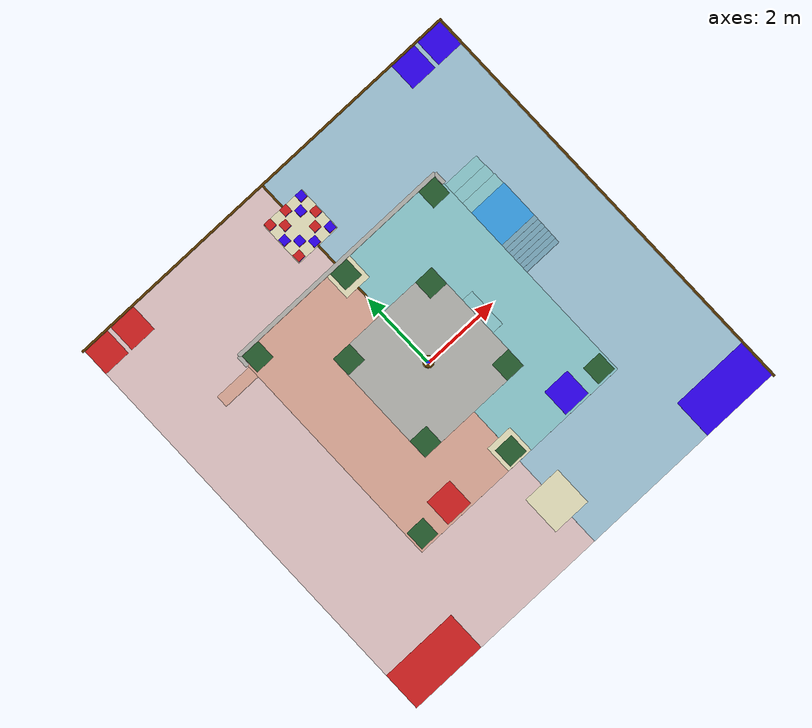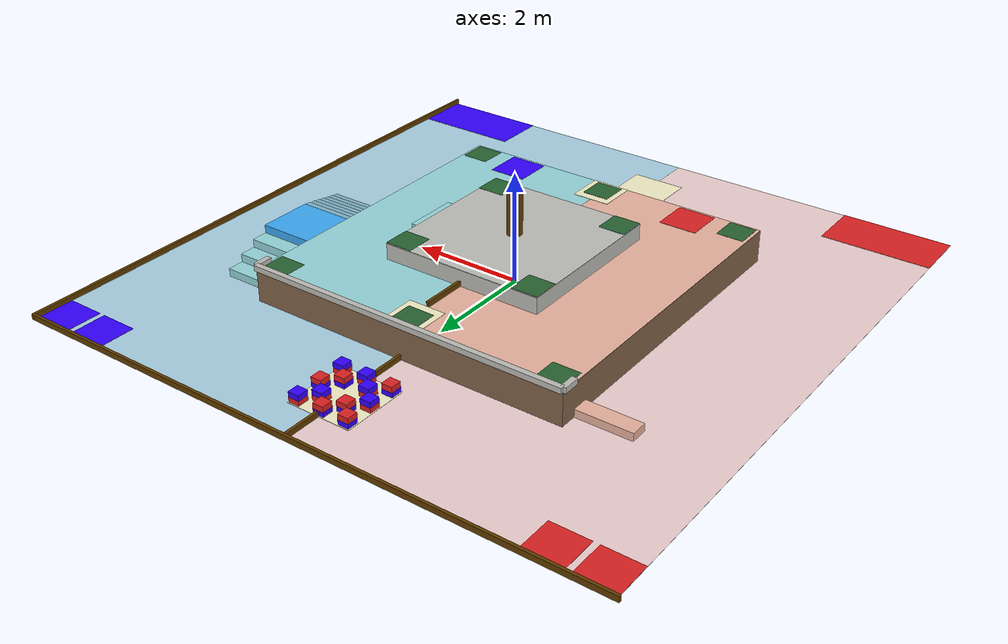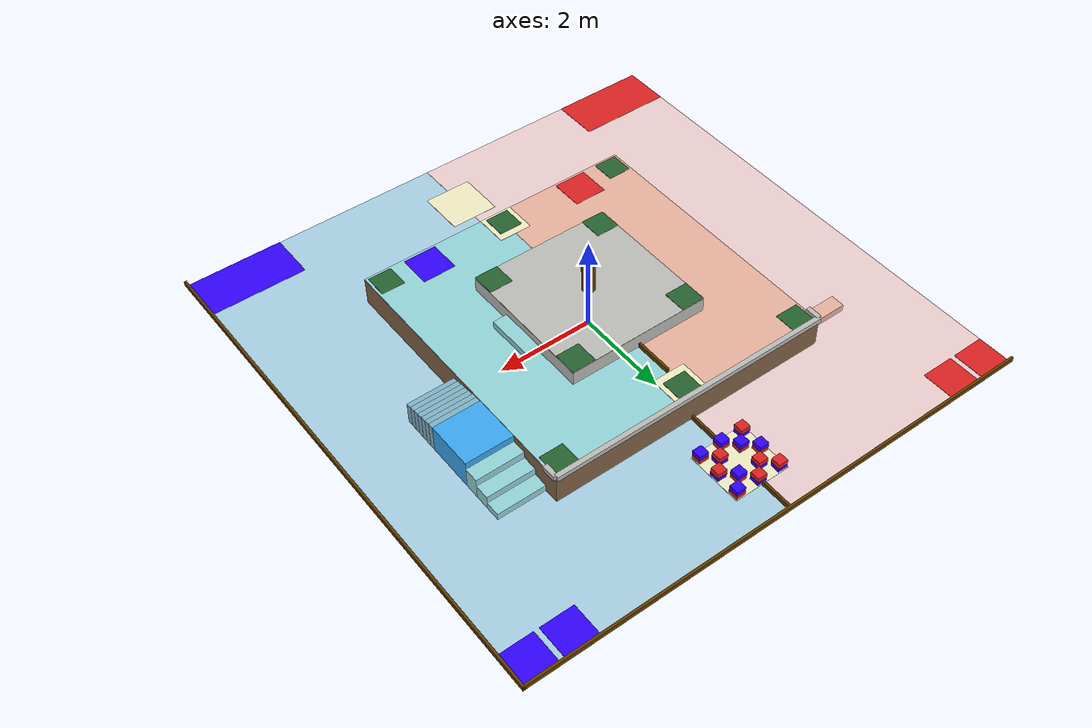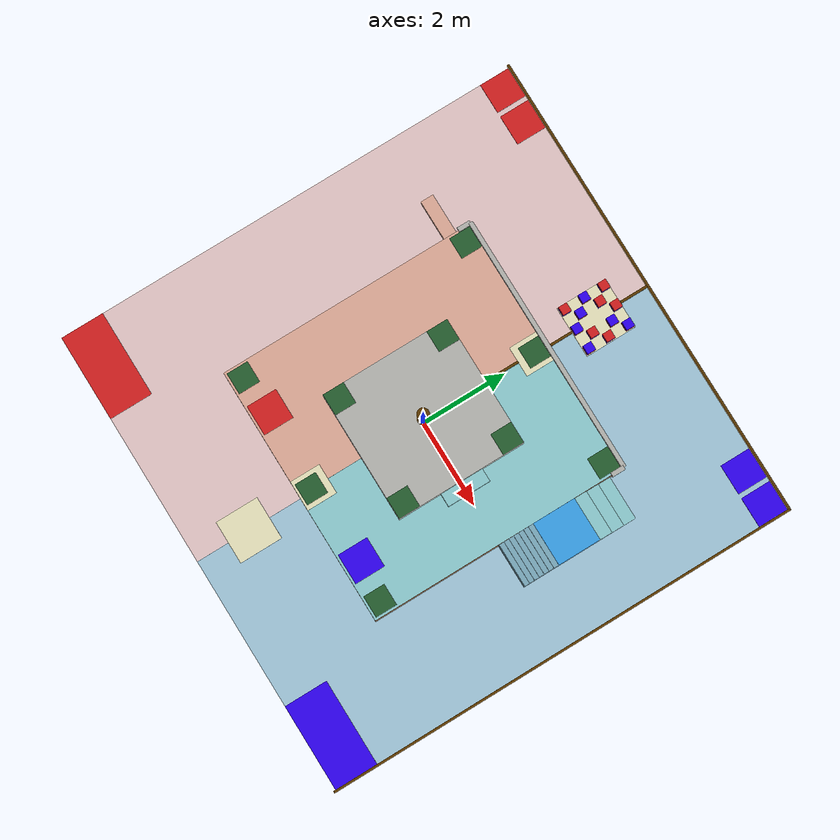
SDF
<sdf version="1.6">
 <world name="robocon2027_arena">
  <model name="catch_floor">
   <static>true</static>
   <pose>0 0 -0.25 0 0 0</pose>
   <link name="link">
    <collision name="col">
     <geometry><plane><normal>0 0 1</normal><size>200 200</size></plane></geometry>
    </collision>
   </link>
  </model>
  <model name="l1_platform">
   <static>true</static>
   <pose>0.0000 0.0000 0.3000 0.000000 0.000000 0.000000</pose>
   <link name="link">
    <collision name="col"><geometry><box><size>6.0 6.0 0.6</size></box></geometry></collision>
    <visual name="vis">
     <geometry><box><size>6.0 6.0 0.6</size></box></geometry>
     <material>
      <ambient>0.510 0.392 0.282 1.00</ambient>
      <diffuse>0.510 0.392 0.282 1.00</diffuse>
      <specular>0.04 0.04 0.04 1</specular>
      <emissive>0 0 0 1</emissive>
     </material>
    </visual>
   </link>
  </model>
  <model name="l2_platform">
   <static>true</static>
   <pose>0.0000 0.0000 0.7500 0.000000 0.000000 0.000000</pose>
   <link name="link">
    <collision name="col"><geometry><box><size>3.0 3.0 0.3</size></box></geometry></collision>
    <visual name="vis">
     <geometry><box><size>3.0 3.0 0.3</size></box></geometry>
     <material>
      <ambient>0.745 0.745 0.725 1.00</ambient>
      <diffuse>0.745 0.745 0.725 1.00</diffuse>
      <specular>0.04 0.04 0.04 1</specular>
      <emissive>0 0 0 1</emissive>
     </material>
    </visual>
   </link>
  </model>
  <model name="central_pillar">
   <static>true</static>
   <pose>0.0000 0.0000 1.3000 0 0 0</pose>
   <link name="link">
    <collision name="col">
     <geometry><cylinder><radius>0.135</radius><length>0.8</length></cylinder></geometry>
    </collision>
    <visual name="vis">
     <geometry><cylinder><radius>0.135</radius><length>0.8</length></cylinder></geometry>
     <material>
      <ambient>0.392 0.243 0.000 1.00</ambient>
      <diffuse>0.392 0.243 0.000 1.00</diffuse>
      <specular>0.04 0.04 0.04 1</specular>
      <emissive>0 0 0 1</emissive>
     </material>
    </visual>
   </link>
  </model>
  <model name="fence_pN">
   <static>true</static>
   <pose>0.0000 5.5250 0.0500 0.000000 0.000000 0.000000</pose>
   <link name="link">
    <collision name="col"><geometry><box><size>11.1 0.05 0.1</size></box></geometry></collision>
    <visual name="vis">
     <geometry><box><size>11.1 0.05 0.1</size></box></geometry>
     <material>
      <ambient>0.392 0.243 0.000 1.00</ambient>
      <diffuse>0.392 0.243 0.000 1.00</diffuse>
      <specular>0.04 0.04 0.04 1</specular>
      <emissive>0 0 0 1</emissive>
     </material>
    </visual>
   </link>
  </model>
  <model name="fence_pE">
   <static>true</static>
   <pose>5.5250 0.0000 0.0500 0.000000 0.000000 0.000000</pose>
   <link name="link">
    <collision name="col"><geometry><box><size>0.05 11.1 0.1</size></box></geometry></collision>
    <visual name="vis">
     <geometry><box><size>0.05 11.1 0.1</size></box></geometry>
     <material>
      <ambient>0.392 0.243 0.000 1.00</ambient>
      <diffuse>0.392 0.243 0.000 1.00</diffuse>
      <specular>0.04 0.04 0.04 1</specular>
      <emissive>0 0 0 1</emissive>
     </material>
    </visual>
   </link>
  </model>
  <model name="gdiv_0">
   <static>true</static>
   <pose>0.0000 3.3250 0.0500 0.000000 0.000000 0.000000</pose>
   <link name="link">
    <collision name="col"><geometry><box><size>0.05 0.65 0.1</size></box></geometry></collision>
    <visual name="vis">
     <geometry><box><size>0.05 0.65 0.1</size></box></geometry>
     <material>
      <ambient>0.392 0.243 0.000 1.00</ambient>
      <diffuse>0.392 0.243 0.000 1.00</diffuse>
      <specular>0.04 0.04 0.04 1</specular>
      <emissive>0 0 0 1</emissive>
     </material>
    </visual>
   </link>
  </model>
  <model name="gdiv_1">
   <static>true</static>
   <pose>0.0000 5.1750 0.0500 0.000000 0.000000 0.000000</pose>
   <link name="link">
    <collision name="col"><geometry><box><size>0.05 0.65 0.1</size></box></geometry></collision>
    <visual name="vis">
     <geometry><box><size>0.05 0.65 0.1</size></box></geometry>
     <material>
      <ambient>0.392 0.243 0.000 1.00</ambient>
      <diffuse>0.392 0.243 0.000 1.00</diffuse>
      <specular>0.04 0.04 0.04 1</specular>
      <emissive>0 0 0 1</emissive>
     </material>
    </visual>
   </link>
  </model>
  <model name="ddiv_0">
   <static>true</static>
   <pose>0.0000 1.9000 0.6500 0.000000 0.000000 0.000000</pose>
   <link name="link">
    <collision name="col"><geometry><box><size>0.05 0.8 0.1</size></box></geometry></collision>
    <visual name="vis">
     <geometry><box><size>0.05 0.8 0.1</size></box></geometry>
     <material>
      <ambient>0.392 0.243 0.000 1.00</ambient>
      <diffuse>0.392 0.243 0.000 1.00</diffuse>
      <specular>0.04 0.04 0.04 1</specular>
      <emissive>0 0 0 1</emissive>
     </material>
    </visual>
   </link>
  </model>
  <model name="stp_red_2">
   <static>true</static>
   <pose>-3.5000 2.5500 0.0750 0.000000 0.000000 0.000000</pose>
   <link name="link">
    <collision name="col"><geometry><box><size>1.0 0.3 0.15</size></box></geometry></collision>
    <visual name="vis">
     <geometry><box><size>1.0 0.3 0.15</size></box></geometry>
     <material>
      <ambient>0.922 0.706 0.627 1.00</ambient>
      <diffuse>0.922 0.706 0.627 1.00</diffuse>
      <specular>0.04 0.04 0.04 1</specular>
      <emissive>0 0 0 1</emissive>
     </material>
    </visual>
   </link>
  </model>
  <model name="rampsup_blue_23">
   <static>true</static>
   <pose>3.5000 0.0417 0.2350 0.000000 0.000000 0.000000</pose>
   <link name="link">
    <collision name="col">
     <geometry><box><size>1.0 0.11866666666666652 0.4700000000000001</size></box></geometry>
    </collision>
    <visual name="vis">
     <geometry><box><size>1.0 0.11866666666666652 0.4700000000000001</size></box></geometry>
     <material>
      <ambient>0.510 0.706 0.784 1.00</ambient>
      <diffuse>0.510 0.706 0.784 1.00</diffuse>
      <specular>0.04 0.04 0.04 1</specular>
      <emissive>0 0 0 1</emissive>
     </material>
    </visual>
   </link>
  </model>
  <model name="rampsup_blue_24">
   <static>true</static>
   <pose>3.5000 0.1583 0.2450 0.000000 0.000000 0.000000</pose>
   <link name="link">
    <collision name="col">
     <geometry><box><size>1.0 0.11866666666666652 0.48999999999999994</size></box></geometry>
    </collision>
    <visual name="vis">
     <geometry><box><size>1.0 0.11866666666666652 0.48999999999999994</size></box></geometry>
     <material>
      <ambient>0.510 0.706 0.784 1.00</ambient>
      <diffuse>0.510 0.706 0.784 1.00</diffuse>
      <specular>0.04 0.04 0.04 1</specular>
      <emissive>0 0 0 1</emissive>
     </material>
    </visual>
   </link>
  </model>
  <model name="rampsup_blue_25">
   <static>true</static>
   <pose>3.5000 0.2750 0.2550 0.000000 0.000000 0.000000</pose>
   <link name="link">
    <collision name="col"><geometry><box><size>1.0 0.11866666666666698 0.51</size></box></geometry></collision>
    <visual name="vis">
     <geometry><box><size>1.0 0.11866666666666698 0.51</size></box></geometry>
     <material>
      <ambient>0.510 0.706 0.784 1.00</ambient>
      <diffuse>0.510 0.706 0.784 1.00</diffuse>
      <specular>0.04 0.04 0.04 1</specular>
      <emissive>0 0 0 1</emissive>
     </material>
    </visual>
   </link>
  </model>
  <model name="rampsup_blue_26">
   <static>true</static>
   <pose>3.5000 0.3917 0.2650 0.000000 0.000000 0.000000</pose>
   <link name="link">
    <collision name="col">
     <geometry><box><size>1.0 0.11866666666666652 0.5300000000000001</size></box></geometry>
    </collision>
    <visual name="vis">
     <geometry><box><size>1.0 0.11866666666666652 0.5300000000000001</size></box></geometry>
     <material>
      <ambient>0.510 0.706 0.784 1.00</ambient>
      <diffuse>0.510 0.706 0.784 1.00</diffuse>
      <specular>0.04 0.04 0.04 1</specular>
      <emissive>0 0 0 1</emissive>
     </material>
    </visual>
   </link>
  </model>
  <model name="rampsup_blue_27">
   <static>true</static>
   <pose>3.5000 0.5083 0.2750 0.000000 0.000000 0.000000</pose>
   <link name="link">
    <collision name="col">
     <geometry><box><size>1.0 0.11866666666666652 0.5499999999999999</size></box></geometry>
    </collision>
    <visual name="vis">
     <geometry><box><size>1.0 0.11866666666666652 0.5499999999999999</size></box></geometry>
     <material>
      <ambient>0.510 0.706 0.784 1.00</ambient>
      <diffuse>0.510 0.706 0.784 1.00</diffuse>
      <specular>0.04 0.04 0.04 1</specular>
      <emissive>0 0 0 1</emissive>
     </material>
    </visual>
   </link>
  </model>
  <model name="rampsup_blue_28">
   <static>true</static>
   <pose>3.5000 0.6250 0.2850 0.000000 0.000000 0.000000</pose>
   <link name="link">
    <collision name="col">
     <geometry><box><size>1.0 0.11866666666666698 0.5700000000000001</size></box></geometry>
    </collision>
    <visual name="vis">
     <geometry><box><size>1.0 0.11866666666666698 0.5700000000000001</size></box></geometry>
     <material>
      <ambient>0.510 0.706 0.784 1.00</ambient>
      <diffuse>0.510 0.706 0.784 1.00</diffuse>
      <specular>0.04 0.04 0.04 1</specular>
      <emissive>0 0 0 1</emissive>
     </material>
    </visual>
   </link>
  </model>
  <model name="rampsup_blue_29">
   <static>true</static>
   <pose>3.5000 0.7417 0.2950 0.000000 0.000000 0.000000</pose>
   <link name="link">
    <collision name="col">
     <geometry><box><size>1.0 0.11866666666666652 0.5900000000000001</size></box></geometry>
    </collision>
    <visual name="vis">
     <geometry><box><size>1.0 0.11866666666666652 0.5900000000000001</size></box></geometry>
     <material>
      <ambient>0.510 0.706 0.784 1.00</ambient>
      <diffuse>0.510 0.706 0.784 1.00</diffuse>
      <specular>0.04 0.04 0.04 1</specular>
      <emissive>0 0 0 1</emissive>
     </material>
    </visual>
   </link>
  </model>
  <model name="plat_blue">
   <static>true</static>
   <pose>3.5000 1.3000 0.3000 0.000000 0.000000 0.000000</pose>
   <link name="link">
    <collision name="col"><geometry><box><size>1.0 1.0 0.6</size></box></geometry></collision>
    <visual name="vis">
     <geometry><box><size>1.0 1.0 0.6</size></box></geometry>
     <material>
      <ambient>0.235 0.667 0.961 1.00</ambient>
      <diffuse>0.235 0.667 0.961 1.00</diffuse>
      <specular>0.04 0.04 0.04 1</specular>
      <emissive>0 0 0 1</emissive>
     </material>
    </visual>
   </link>
  </model>
  <model name="stp_blue_0">
   <static>true</static>
   <pose>3.5000 1.9500 0.2250 0.000000 0.000000 0.000000</pose>
   <link name="link">
    <collision name="col"><geometry><box><size>1.0 0.3 0.45</size></box></geometry></collision>
    <visual name="vis">
     <geometry><box><size>1.0 0.3 0.45</size></box></geometry>
     <material>
      <ambient>0.588 0.843 0.863 1.00</ambient>
      <diffuse>0.588 0.843 0.863 1.00</diffuse>
      <specular>0.04 0.04 0.04 1</specular>
      <emissive>0 0 0 1</emissive>
     </material>
    </visual>
   </link>
  </model>
  <model name="stp_blue_1">
   <static>true</static>
   <pose>3.5000 2.2500 0.1500 0.000000 0.000000 0.000000</pose>
   <link name="link">
    <collision name="col"><geometry><box><size>1.0 0.3 0.3</size></box></geometry></collision>
    <visual name="vis">
     <geometry><box><size>1.0 0.3 0.3</size></box></geometry>
     <material>
      <ambient>0.588 0.843 0.863 1.00</ambient>
      <diffuse>0.588 0.843 0.863 1.00</diffuse>
      <specular>0.04 0.04 0.04 1</specular>
      <emissive>0 0 0 1</emissive>
     </material>
    </visual>
   </link>
  </model>
  <model name="stp_blue_2">
   <static>true</static>
   <pose>3.5000 2.5500 0.0750 0.000000 0.000000 0.000000</pose>
   <link name="link">
    <collision name="col"><geometry><box><size>1.0 0.3 0.15</size></box></geometry></collision>
    <visual name="vis">
     <geometry><box><size>1.0 0.3 0.15</size></box></geometry>
     <material>
      <ambient>0.588 0.843 0.863 1.00</ambient>
      <diffuse>0.588 0.843 0.863 1.00</diffuse>
      <specular>0.04 0.04 0.04 1</specular>
      <emissive>0 0 0 1</emissive>
     </material>
    </visual>
   </link>
  </model>
  <model name="st2_blue">
   <static>true</static>
   <pose>1.6500 0.0000 0.6750 0.000000 0.000000 0.000000</pose>
   <link name="link">
    <collision name="col"><geometry><box><size>0.3 1.0 0.15</size></box></geometry></collision>
    <visual name="vis">
     <geometry><box><size>0.3 1.0 0.15</size></box></geometry>
     <material>
      <ambient>0.588 0.843 0.863 1.00</ambient>
      <diffuse>0.588 0.843 0.863 1.00</diffuse>
      <specular>0.04 0.04 0.04 1</specular>
      <emissive>0 0 0 1</emissive>
     </material>
    </visual>
   </link>
  </model>
  <model name="rail_ns+">
   <static>true</static>
   <pose>0.0000 3.0000 0.6500 0.000000 0.000000 0.000000</pose>
   <link name="link">
    <collision name="col"><geometry><box><size>6.0 0.1 0.1</size></box></geometry></collision>
    <visual name="vis">
     <geometry><box><size>6.0 0.1 0.1</size></box></geometry>
     <material>
      <ambient>0.745 0.745 0.725 1.00</ambient>
      <diffuse>0.745 0.745 0.725 1.00</diffuse>
      <specular>0.04 0.04 0.04 1</specular>
      <emissive>0 0 0 1</emissive>
     </material>
    </visual>
   </link>
  </model>
  <model name="rail_we_-_1">
   <static>true</static>
   <pose>-3.0000 2.8500 0.6500 0.000000 0.000000 0.000000</pose>
   <link name="link">
    <collision name="col"><geometry><box><size>0.1 0.3 0.1</size></box></geometry></collision>
    <visual name="vis">
     <geometry><box><size>0.1 0.3 0.1</size></box></geometry>
     <material>
      <ambient>0.745 0.745 0.725 1.00</ambient>
      <diffuse>0.745 0.745 0.725 1.00</diffuse>
      <specular>0.04 0.04 0.04 1</specular>
      <emissive>0 0 0 1</emissive>
     </material>
    </visual>
   </link>
  </model>
  <model name="rail_we_+_1">
   <static>true</static>
   <pose>3.0000 2.8500 0.6500 0.000000 0.000000 0.000000</pose>
   <link name="link">
    <collision name="col"><geometry><box><size>0.1 0.3 0.1</size></box></geometry></collision>
    <visual name="vis">
     <geometry><box><size>0.1 0.3 0.1</size></box></geometry>
     <material>
      <ambient>0.745 0.745 0.725 1.00</ambient>
      <diffuse>0.745 0.745 0.725 1.00</diffuse>
      <specular>0.04 0.04 0.04 1</specular>
      <emissive>0 0 0 1</emissive>
     </material>
    </visual>
   </link>
  </model>
  <model name="field_decor">
   <static>true</static>
   <link name="link">
    <visual name="v0">
     <pose>-2.7500 0.0000 0.0040 0 0 0</pose>
     <geometry><box><size>5.4990000000000006 10.999 0.006</size></box></geometry>
     <material>
      <ambient>0.941 0.824 0.824 1.00</ambient>
      <diffuse>0.941 0.824 0.824 1.00</diffuse>
      <specular>0.04 0.04 0.04 1</specular>
      <emissive>0 0 0 1</emissive>
     </material>
    </visual>
    <visual name="v1">
     <pose>2.7500 0.0000 0.0040 0 0 0</pose>
     <geometry><box><size>5.4990000000000006 10.999 0.006</size></box></geometry>
     <material>
      <ambient>0.667 0.824 0.902 1.00</ambient>
      <diffuse>0.667 0.824 0.902 1.00</diffuse>
      <specular>0.04 0.04 0.04 1</specular>
      <emissive>0 0 0 1</emissive>
     </material>
    </visual>
    <visual name="v2">
     <pose>-5.1500 5.1500 0.0100 0 0 0</pose>
     <geometry><box><size>0.6960000000000001 0.6960000000000001 0.006</size></box></geometry>
     <material>
      <ambient>0.875 0.133 0.133 1.00</ambient>
      <diffuse>0.875 0.133 0.133 1.00</diffuse>
      <specular>0.04 0.04 0.04 1</specular>
      <emissive>0 0 0 1</emissive>
     </material>
    </visual>
    <visual name="v3">
     <pose>-4.3500 5.1500 0.0100 0 0 0</pose>
     <geometry><box><size>0.6960000000000001 0.6960000000000001 0.006</size></box></geometry>
     <material>
      <ambient>0.875 0.133 0.133 1.00</ambient>
      <diffuse>0.875 0.133 0.133 1.00</diffuse>
      <specular>0.04 0.04 0.04 1</specular>
      <emissive>0 0 0 1</emissive>
     </material>
    </visual>
    <visual name="v4">
     <pose>4.3500 5.1500 0.0100 0 0 0</pose>
     <geometry><box><size>0.6960000000000001 0.6960000000000001 0.006</size></box></geometry>
     <material>
      <ambient>0.196 0.000 1.000 1.00</ambient>
      <diffuse>0.196 0.000 1.000 1.00</diffuse>
      <specular>0.04 0.04 0.04 1</specular>
      <emissive>0 0 0 1</emissive>
     </material>
    </visual>
    <visual name="v5">
     <pose>5.1500 5.1500 0.0100 0 0 0</pose>
     <geometry><box><size>0.6960000000000001 0.6960000000000001 0.006</size></box></geometry>
     <material>
      <ambient>0.196 0.000 1.000 1.00</ambient>
      <diffuse>0.196 0.000 1.000 1.00</diffuse>
      <specular>0.04 0.04 0.04 1</specular>
      <emissive>0 0 0 1</emissive>
     </material>
    </visual>
    <visual name="v6">
     <pose>-4.5000 -5.0000 0.0100 0 0 0</pose>
     <geometry><box><size>2.0 1.0 0.006</size></box></geometry>
     <material>
      <ambient>0.875 0.133 0.133 1.00</ambient>
      <diffuse>0.875 0.133 0.133 1.00</diffuse>
      <specular>0.04 0.04 0.04 1</specular>
      <emissive>0 0 0 1</emissive>
     </material>
    </visual>
    <visual name="v7">
     <pose>4.5000 -5.0000 0.0100 0 0 0</pose>
     <geometry><box><size>2.0 1.0 0.006</size></box></geometry>
     <material>
      <ambient>0.196 0.000 1.000 1.00</ambient>
      <diffuse>0.196 0.000 1.000 1.00</diffuse>
      <specular>0.04 0.04 0.04 1</specular>
      <emissive>0 0 0 1</emissive>
     </material>
    </visual>
    <visual name="v8">
     <pose>0.0000 4.2500 0.0100 0 0 0</pose>
     <geometry><box><size>1.196 1.196 0.006</size></box></geometry>
     <material>
      <ambient>0.961 0.941 0.784 1.00</ambient>
      <diffuse>0.961 0.941 0.784 1.00</diffuse>
      <specular>0.04 0.04 0.04 1</specular>
      <emissive>0 0 0 1</emissive>
     </material>
    </visual>
    <visual name="v9">
     <pose>0.0000 -4.2500 0.0100 0 0 0</pose>
     <geometry><box><size>0.996 0.996 0.006</size></box></geometry>
     <material>
      <ambient>0.961 0.941 0.784 1.00</ambient>
      <diffuse>0.961 0.941 0.784 1.00</diffuse>
      <specular>0.04 0.04 0.04 1</specular>
      <emissive>0 0 0 1</emissive>
     </material>
    </visual>
    <visual name="v10">
     <pose>-1.5000 0.0000 0.6040 0 0 0</pose>
     <geometry><box><size>2.999 5.9990000000000006 0.006</size></box></geometry>
     <material>
      <ambient>0.922 0.706 0.627 1.00</ambient>
      <diffuse>0.922 0.706 0.627 1.00</diffuse>
      <specular>0.04 0.04 0.04 1</specular>
      <emissive>0 0 0 1</emissive>
     </material>
    </visual>
    <visual name="v11">
     <pose>1.5000 0.0000 0.6040 0 0 0</pose>
     <geometry><box><size>2.999 5.9990000000000006 0.006</size></box></geometry>
     <material>
      <ambient>0.588 0.843 0.863 1.00</ambient>
      <diffuse>0.588 0.843 0.863 1.00</diffuse>
      <specular>0.04 0.04 0.04 1</specular>
      <emissive>0 0 0 1</emissive>
     </material>
    </visual>
    <visual name="v12">
     <pose>0.0000 0.0000 0.9040 0 0 0</pose>
     <geometry><box><size>2.999 2.999 0.006</size></box></geometry>
     <material>
      <ambient>0.745 0.745 0.725 1.00</ambient>
      <diffuse>0.745 0.745 0.725 1.00</diffuse>
      <specular>0.04 0.04 0.04 1</specular>
      <emissive>0 0 0 1</emissive>
     </material>
    </visual>
    <visual name="v13">
     <pose>-1.8000 -2.6000 0.6100 0 0 0</pose>
     <geometry><box><size>0.6960000000000001 0.6960000000000001 0.006</size></box></geometry>
     <material>
      <ambient>0.875 0.133 0.133 1.00</ambient>
      <diffuse>0.875 0.133 0.133 1.00</diffuse>
      <specular>0.04 0.04 0.04 1</specular>
      <emissive>0 0 0 1</emissive>
     </material>
    </visual>
    <visual name="v14">
     <pose>1.8000 -2.6000 0.6100 0 0 0</pose>
     <geometry><box><size>0.6960000000000001 0.6960000000000001 0.006</size></box></geometry>
     <material>
      <ambient>0.196 0.000 1.000 1.00</ambient>
      <diffuse>0.196 0.000 1.000 1.00</diffuse>
      <specular>0.04 0.04 0.04 1</specular>
      <emissive>0 0 0 1</emissive>
     </material>
    </visual>
    <visual name="v15">
     <pose>0.0000 -2.6500 0.6100 0 0 0</pose>
     <geometry><box><size>0.6960000000000001 0.6960000000000001 0.006</size></box></geometry>
     <material>
      <ambient>0.961 0.941 0.784 1.00</ambient>
      <diffuse>0.961 0.941 0.784 1.00</diffuse>
      <specular>0.04 0.04 0.04 1</specular>
      <emissive>0 0 0 1</emissive>
     </material>
    </visual>
    <visual name="v16">
     <pose>0.0000 2.6500 0.6100 0 0 0</pose>
     <geometry><box><size>0.6960000000000001 0.6960000000000001 0.006</size></box></geometry>
     <material>
      <ambient>0.961 0.941 0.784 1.00</ambient>
      <diffuse>0.961 0.941 0.784 1.00</diffuse>
      <specular>0.04 0.04 0.04 1</specular>
      <emissive>0 0 0 1</emissive>
     </material>
    </visual>
    <visual name="v17">
     <pose>-2.7000 -2.7000 0.6160 0 0 0</pose>
     <geometry><box><size>0.496 0.496 0.006</size></box></geometry>
     <material>
      <ambient>0.157 0.392 0.196 1.00</ambient>
      <diffuse>0.157 0.392 0.196 1.00</diffuse>
      <specular>0.04 0.04 0.04 1</specular>
      <emissive>0 0 0 1</emissive>
     </material>
    </visual>
    <visual name="v18">
     <pose>0.0000 -2.7000 0.6160 0 0 0</pose>
     <geometry><box><size>0.496 0.496 0.006</size></box></geometry>
     <material>
      <ambient>0.157 0.392 0.196 1.00</ambient>
      <diffuse>0.157 0.392 0.196 1.00</diffuse>
      <specular>0.04 0.04 0.04 1</specular>
      <emissive>0 0 0 1</emissive>
     </material>
    </visual>
    <visual name="v19">
     <pose>2.7000 -2.7000 0.6160 0 0 0</pose>
     <geometry><box><size>0.496 0.496 0.006</size></box></geometry>
     <material>
      <ambient>0.157 0.392 0.196 1.00</ambient>
      <diffuse>0.157 0.392 0.196 1.00</diffuse>
      <specular>0.04 0.04 0.04 1</specular>
      <emissive>0 0 0 1</emissive>
     </material>
    </visual>
    <visual name="v20">
     <pose>-2.7000 2.7000 0.6160 0 0 0</pose>
     <geometry><box><size>0.496 0.496 0.006</size></box></geometry>
     <material>
      <ambient>0.157 0.392 0.196 1.00</ambient>
      <diffuse>0.157 0.392 0.196 1.00</diffuse>
      <specular>0.04 0.04 0.04 1</specular>
      <emissive>0 0 0 1</emissive>
     </material>
    </visual>
    <visual name="v21">
     <pose>0.0000 2.7000 0.6160 0 0 0</pose>
     <geometry><box><size>0.496 0.496 0.006</size></box></geometry>
     <material>
      <ambient>0.157 0.392 0.196 1.00</ambient>
      <diffuse>0.157 0.392 0.196 1.00</diffuse>
      <specular>0.04 0.04 0.04 1</specular>
      <emissive>0 0 0 1</emissive>
     </material>
    </visual>
    <visual name="v22">
     <pose>2.7000 2.7000 0.6160 0 0 0</pose>
     <geometry><box><size>0.496 0.496 0.006</size></box></geometry>
     <material>
      <ambient>0.157 0.392 0.196 1.00</ambient>
      <diffuse>0.157 0.392 0.196 1.00</diffuse>
      <specular>0.04 0.04 0.04 1</specular>
      <emissive>0 0 0 1</emissive>
     </material>
    </visual>
    <visual name="v23">
     <pose>-1.2500 -1.2500 0.9160 0 0 0</pose>
     <geometry><box><size>0.496 0.496 0.006</size></box></geometry>
     <material>
      <ambient>0.157 0.392 0.196 1.00</ambient>
      <diffuse>0.157 0.392 0.196 1.00</diffuse>
      <specular>0.04 0.04 0.04 1</specular>
      <emissive>0 0 0 1</emissive>
     </material>
    </visual>
    <visual name="v24">
     <pose>1.2500 -1.2500 0.9160 0 0 0</pose>
     <geometry><box><size>0.496 0.496 0.006</size></box></geometry>
     <material>
      <ambient>0.157 0.392 0.196 1.00</ambient>
      <diffuse>0.157 0.392 0.196 1.00</diffuse>
      <specular>0.04 0.04 0.04 1</specular>
      <emissive>0 0 0 1</emissive>
     </material>
    </visual>
    <visual name="v25">
     <pose>-1.2500 1.2500 0.9160 0 0 0</pose>
     <geometry><box><size>0.496 0.496 0.006</size></box></geometry>
     <material>
      <ambient>0.157 0.392 0.196 1.00</ambient>
      <diffuse>0.157 0.392 0.196 1.00</diffuse>
      <specular>0.04 0.04 0.04 1</specular>
      <emissive>0 0 0 1</emissive>
     </material>
    </visual>
    <visual name="v26">
     <pose>1.2500 1.2500 0.9160 0 0 0</pose>
     <geometry><box><size>0.496 0.496 0.006</size></box></geometry>
     <material>
      <ambient>0.157 0.392 0.196 1.00</ambient>
      <diffuse>0.157 0.392 0.196 1.00</diffuse>
      <specular>0.04 0.04 0.04 1</specular>
      <emissive>0 0 0 1</emissive>
     </material>
    </visual>
   </link>
  </model>
  <model name="sky_0">
   <static>false</static>
   <pose>-0.4800 4.7300 0.1000 0 0 0</pose>
   <link name="link">
    <inertial>
     <mass>0.22</mass>
     <inertia><ixx>0.00146667</ixx><iyy>0.00146667</iyy><izz>0.00146667</izz></inertia>
    </inertial>
    <collision name="col"><geometry><box><size>0.2 0.2 0.2</size></box></geometry></collision>
    <visual name="up">
     <pose>0 0 0.05000 0 0 0</pose>
     <geometry><box><size>0.2 0.2 0.10000</size></box></geometry>
     <material>
      <ambient>0.875 0.133 0.133 1.00</ambient>
      <diffuse>0.875 0.133 0.133 1.00</diffuse>
      <specular>0.04 0.04 0.04 1</specular>
      <emissive>0 0 0 1</emissive>
     </material>
    </visual>
    <visual name="dn">
     <pose>0 0 -0.05000 0 0 0</pose>
     <geometry><box><size>0.2 0.2 0.10000</size></box></geometry>
     <material>
      <ambient>0.196 0.000 1.000 1.00</ambient>
      <diffuse>0.196 0.000 1.000 1.00</diffuse>
      <specular>0.04 0.04 0.04 1</specular>
      <emissive>0 0 0 1</emissive>
     </material>
    </visual>
   </link>
  </model>
  <model name="sky_1">
   <static>false</static>
   <pose>0.0000 4.7300 0.1000 0 0 0</pose>
   <link name="link">
    <inertial>
     <mass>0.22</mass>
     <inertia><ixx>0.00146667</ixx><iyy>0.00146667</iyy><izz>0.00146667</izz></inertia>
    </inertial>
    <collision name="col"><geometry><box><size>0.2 0.2 0.2</size></box></geometry></collision>
    <visual name="up">
     <pose>0 0 0.05000 0 0 0</pose>
     <geometry><box><size>0.2 0.2 0.10000</size></box></geometry>
     <material>
      <ambient>0.875 0.133 0.133 1.00</ambient>
      <diffuse>0.875 0.133 0.133 1.00</diffuse>
      <specular>0.04 0.04 0.04 1</specular>
      <emissive>0 0 0 1</emissive>
     </material>
    </visual>
    <visual name="dn">
     <pose>0 0 -0.05000 0 0 0</pose>
     <geometry><box><size>0.2 0.2 0.10000</size></box></geometry>
     <material>
      <ambient>0.196 0.000 1.000 1.00</ambient>
      <diffuse>0.196 0.000 1.000 1.00</diffuse>
      <specular>0.04 0.04 0.04 1</specular>
      <emissive>0 0 0 1</emissive>
     </material>
    </visual>
   </link>
  </model>
  <model name="sky_2">
   <static>false</static>
   <pose>0.4800 4.7300 0.1000 0 0 0</pose>
   <link name="link">
    <inertial>
     <mass>0.22</mass>
     <inertia><ixx>0.00146667</ixx><iyy>0.00146667</iyy><izz>0.00146667</izz></inertia>
    </inertial>
    <collision name="col"><geometry><box><size>0.2 0.2 0.2</size></box></geometry></collision>
    <visual name="up">
     <pose>0 0 0.05000 0 0 0</pose>
     <geometry><box><size>0.2 0.2 0.10000</size></box></geometry>
     <material>
      <ambient>0.196 0.000 1.000 1.00</ambient>
      <diffuse>0.196 0.000 1.000 1.00</diffuse>
      <specular>0.04 0.04 0.04 1</specular>
      <emissive>0 0 0 1</emissive>
     </material>
    </visual>
    <visual name="dn">
     <pose>0 0 -0.05000 0 0 0</pose>
     <geometry><box><size>0.2 0.2 0.10000</size></box></geometry>
     <material>
      <ambient>0.875 0.133 0.133 1.00</ambient>
      <diffuse>0.875 0.133 0.133 1.00</diffuse>
      <specular>0.04 0.04 0.04 1</specular>
      <emissive>0 0 0 1</emissive>
     </material>
    </visual>
   </link>
  </model>
  <model name="sky_3">
   <static>false</static>
   <pose>-0.2400 4.4900 0.1000 0 0 0</pose>
   <link name="link">
    <inertial>
     <mass>0.22</mass>
     <inertia><ixx>0.00146667</ixx><iyy>0.00146667</iyy><izz>0.00146667</izz></inertia>
    </inertial>
    <collision name="col"><geometry><box><size>0.2 0.2 0.2</size></box></geometry></collision>
    <visual name="up">
     <pose>0 0 0.05000 0 0 0</pose>
     <geometry><box><size>0.2 0.2 0.10000</size></box></geometry>
     <material>
      <ambient>0.875 0.133 0.133 1.00</ambient>
      <diffuse>0.875 0.133 0.133 1.00</diffuse>
      <specular>0.04 0.04 0.04 1</specular>
      <emissive>0 0 0 1</emissive>
     </material>
    </visual>
    <visual name="dn">
     <pose>0 0 -0.05000 0 0 0</pose>
     <geometry><box><size>0.2 0.2 0.10000</size></box></geometry>
     <material>
      <ambient>0.196 0.000 1.000 1.00</ambient>
      <diffuse>0.196 0.000 1.000 1.00</diffuse>
      <specular>0.04 0.04 0.04 1</specular>
      <emissive>0 0 0 1</emissive>
     </material>
    </visual>
   </link>
  </model>
  <model name="sky_4">
   <static>false</static>
   <pose>0.2400 4.4900 0.1000 0 0 0</pose>
   <link name="link">
    <inertial>
     <mass>0.22</mass>
     <inertia><ixx>0.00146667</ixx><iyy>0.00146667</iyy><izz>0.00146667</izz></inertia>
    </inertial>
    <collision name="col"><geometry><box><size>0.2 0.2 0.2</size></box></geometry></collision>
    <visual name="up">
     <pose>0 0 0.05000 0 0 0</pose>
     <geometry><box><size>0.2 0.2 0.10000</size></box></geometry>
     <material>
      <ambient>0.196 0.000 1.000 1.00</ambient>
      <diffuse>0.196 0.000 1.000 1.00</diffuse>
      <specular>0.04 0.04 0.04 1</specular>
      <emissive>0 0 0 1</emissive>
     </material>
    </visual>
    <visual name="dn">
     <pose>0 0 -0.05000 0 0 0</pose>
     <geometry><box><size>0.2 0.2 0.10000</size></box></geometry>
     <material>
      <ambient>0.875 0.133 0.133 1.00</ambient>
      <diffuse>0.875 0.133 0.133 1.00</diffuse>
      <specular>0.04 0.04 0.04 1</specular>
      <emissive>0 0 0 1</emissive>
     </material>
    </visual>
   </link>
  </model>
  <model name="sky_5">
   <static>false</static>
   <pose>-0.4800 4.2500 0.1000 0 0 0</pose>
   <link name="link">
    <inertial>
     <mass>0.22</mass>
     <inertia><ixx>0.00146667</ixx><iyy>0.00146667</iyy><izz>0.00146667</izz></inertia>
    </inertial>
    <collision name="col"><geometry><box><size>0.2 0.2 0.2</size></box></geometry></collision>
    <visual name="up">
     <pose>0 0 0.05000 0 0 0</pose>
     <geometry><box><size>0.2 0.2 0.10000</size></box></geometry>
     <material>
      <ambient>0.196 0.000 1.000 1.00</ambient>
      <diffuse>0.196 0.000 1.000 1.00</diffuse>
      <specular>0.04 0.04 0.04 1</specular>
      <emissive>0 0 0 1</emissive>
     </material>
    </visual>
    <visual name="dn">
     <pose>0 0 -0.05000 0 0 0</pose>
     <geometry><box><size>0.2 0.2 0.10000</size></box></geometry>
     <material>
      <ambient>0.875 0.133 0.133 1.00</ambient>
      <diffuse>0.875 0.133 0.133 1.00</diffuse>
      <specular>0.04 0.04 0.04 1</specular>
      <emissive>0 0 0 1</emissive>
     </material>
    </visual>
   </link>
  </model>
  <model name="sky_6">
   <static>false</static>
   <pose>0.4800 4.2500 0.1000 0 0 0</pose>
   <link name="link">
    <inertial>
     <mass>0.22</mass>
     <inertia><ixx>0.00146667</ixx><iyy>0.00146667</iyy><izz>0.00146667</izz></inertia>
    </inertial>
    <collision name="col"><geometry><box><size>0.2 0.2 0.2</size></box></geometry></collision>
    <visual name="up">
     <pose>0 0 0.05000 0 0 0</pose>
     <geometry><box><size>0.2 0.2 0.10000</size></box></geometry>
     <material>
      <ambient>0.875 0.133 0.133 1.00</ambient>
      <diffuse>0.875 0.133 0.133 1.00</diffuse>
      <specular>0.04 0.04 0.04 1</specular>
      <emissive>0 0 0 1</emissive>
     </material>
    </visual>
    <visual name="dn">
     <pose>0 0 -0.05000 0 0 0</pose>
     <geometry><box><size>0.2 0.2 0.10000</size></box></geometry>
     <material>
      <ambient>0.196 0.000 1.000 1.00</ambient>
      <diffuse>0.196 0.000 1.000 1.00</diffuse>
      <specular>0.04 0.04 0.04 1</specular>
      <emissive>0 0 0 1</emissive>
     </material>
    </visual>
   </link>
  </model>
  <model name="sky_7">
   <static>false</static>
   <pose>-0.2400 4.0100 0.1000 0 0 0</pose>
   <link name="link">
    <inertial>
     <mass>0.22</mass>
     <inertia><ixx>0.00146667</ixx><iyy>0.00146667</iyy><izz>0.00146667</izz></inertia>
    </inertial>
    <collision name="col"><geometry><box><size>0.2 0.2 0.2</size></box></geometry></collision>
    <visual name="up">
     <pose>0 0 0.05000 0 0 0</pose>
     <geometry><box><size>0.2 0.2 0.10000</size></box></geometry>
     <material>
      <ambient>0.196 0.000 1.000 1.00</ambient>
      <diffuse>0.196 0.000 1.000 1.00</diffuse>
      <specular>0.04 0.04 0.04 1</specular>
      <emissive>0 0 0 1</emissive>
     </material>
    </visual>
    <visual name="dn">
     <pose>0 0 -0.05000 0 0 0</pose>
     <geometry><box><size>0.2 0.2 0.10000</size></box></geometry>
     <material>
      <ambient>0.875 0.133 0.133 1.00</ambient>
      <diffuse>0.875 0.133 0.133 1.00</diffuse>
      <specular>0.04 0.04 0.04 1</specular>
      <emissive>0 0 0 1</emissive>
     </material>
    </visual>
   </link>
  </model>
  <model name="sky_8">
   <static>false</static>
   <pose>0.2400 4.0100 0.1000 0 0 0</pose>
   <link name="link">
    <inertial>
     <mass>0.22</mass>
     <inertia><ixx>0.00146667</ixx><iyy>0.00146667</iyy><izz>0.00146667</izz></inertia>
    </inertial>
    <collision name="col"><geometry><box><size>0.2 0.2 0.2</size></box></geometry></collision>
    <visual name="up">
     <pose>0 0 0.05000 0 0 0</pose>
     <geometry><box><size>0.2 0.2 0.10000</size></box></geometry>
     <material>
      <ambient>0.875 0.133 0.133 1.00</ambient>
      <diffuse>0.875 0.133 0.133 1.00</diffuse>
      <specular>0.04 0.04 0.04 1</specular>
      <emissive>0 0 0 1</emissive>
     </material>
    </visual>
    <visual name="dn">
     <pose>0 0 -0.05000 0 0 0</pose>
     <geometry><box><size>0.2 0.2 0.10000</size></box></geometry>
     <material>
      <ambient>0.196 0.000 1.000 1.00</ambient>
      <diffuse>0.196 0.000 1.000 1.00</diffuse>
      <specular>0.04 0.04 0.04 1</specular>
      <emissive>0 0 0 1</emissive>
     </material>
    </visual>
   </link>
  </model>
  <model name="sky_9">
   <static>false</static>
   <pose>-0.4800 3.7700 0.1000 0 0 0</pose>
   <link name="link">
    <inertial>
     <mass>0.22</mass>
     <inertia><ixx>0.00146667</ixx><iyy>0.00146667</iyy><izz>0.00146667</izz></inertia>
    </inertial>
    <collision name="col"><geometry><box><size>0.2 0.2 0.2</size></box></geometry></collision>
    <visual name="up">
     <pose>0 0 0.05000 0 0 0</pose>
     <geometry><box><size>0.2 0.2 0.10000</size></box></geometry>
     <material>
      <ambient>0.875 0.133 0.133 1.00</ambient>
      <diffuse>0.875 0.133 0.133 1.00</diffuse>
      <specular>0.04 0.04 0.04 1</specular>
      <emissive>0 0 0 1</emissive>
     </material>
    </visual>
    <visual name="dn">
     <pose>0 0 -0.05000 0 0 0</pose>
     <geometry><box><size>0.2 0.2 0.10000</size></box></geometry>
     <material>
      <ambient>0.196 0.000 1.000 1.00</ambient>
      <diffuse>0.196 0.000 1.000 1.00</diffuse>
      <specular>0.04 0.04 0.04 1</specular>
      <emissive>0 0 0 1</emissive>
     </material>
    </visual>
   </link>
  </model>
  <model name="sky_10">
   <static>false</static>
   <pose>0.0000 3.7700 0.1000 0 0 0</pose>
   <link name="link">
    <inertial>
     <mass>0.22</mass>
     <inertia><ixx>0.00146667</ixx><iyy>0.00146667</iyy><izz>0.00146667</izz></inertia>
    </inertial>
    <collision name="col"><geometry><box><size>0.2 0.2 0.2</size></box></geometry></collision>
    <visual name="up">
     <pose>0 0 0.05000 0 0 0</pose>
     <geometry><box><size>0.2 0.2 0.10000</size></box></geometry>
     <material>
      <ambient>0.196 0.000 1.000 1.00</ambient>
      <diffuse>0.196 0.000 1.000 1.00</diffuse>
      <specular>0.04 0.04 0.04 1</specular>
      <emissive>0 0 0 1</emissive>
     </material>
    </visual>
    <visual name="dn">
     <pose>0 0 -0.05000 0 0 0</pose>
     <geometry><box><size>0.2 0.2 0.10000</size></box></geometry>
     <material>
      <ambient>0.875 0.133 0.133 1.00</ambient>
      <diffuse>0.875 0.133 0.133 1.00</diffuse>
      <specular>0.04 0.04 0.04 1</specular>
      <emissive>0 0 0 1</emissive>
     </material>
    </visual>
   </link>
  </model>
  <model name="sky_11">
   <static>false</static>
   <pose>0.4800 3.7700 0.1000 0 0 0</pose>
   <link name="link">
    <inertial>
     <mass>0.22</mass>
     <inertia><ixx>0.00146667</ixx><iyy>0.00146667</iyy><izz>0.00146667</izz></inertia>
    </inertial>
    <collision name="col"><geometry><box><size>0.2 0.2 0.2</size></box></geometry></collision>
    <visual name="up">
     <pose>0 0 0.05000 0 0 0</pose>
     <geometry><box><size>0.2 0.2 0.10000</size></box></geometry>
     <material>
      <ambient>0.196 0.000 1.000 1.00</ambient>
      <diffuse>0.196 0.000 1.000 1.00</diffuse>
      <specular>0.04 0.04 0.04 1</specular>
      <emissive>0 0 0 1</emissive>
     </material>
    </visual>
    <visual name="dn">
     <pose>0 0 -0.05000 0 0 0</pose>
     <geometry><box><size>0.2 0.2 0.10000</size></box></geometry>
     <material>
      <ambient>0.875 0.133 0.133 1.00</ambient>
      <diffuse>0.875 0.133 0.133 1.00</diffuse>
      <specular>0.04 0.04 0.04 1</specular>
      <emissive>0 0 0 1</emissive>
     </material>
    </visual>
   </link>
  </model>
 </world>
</sdf>
